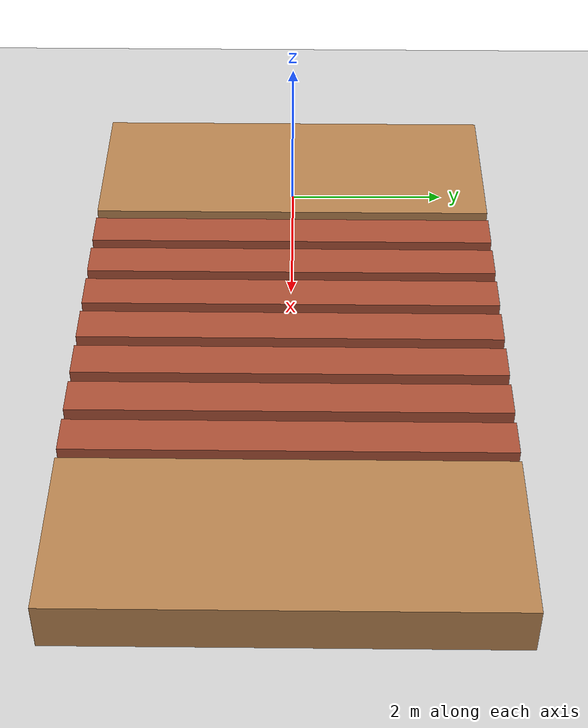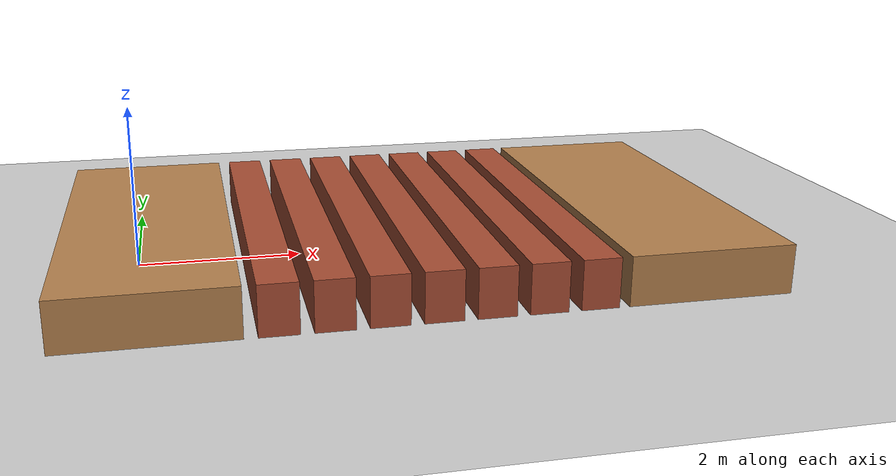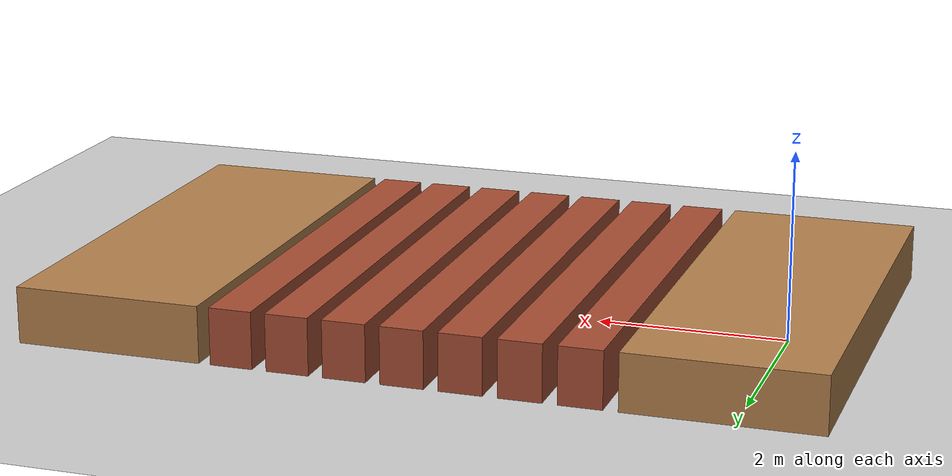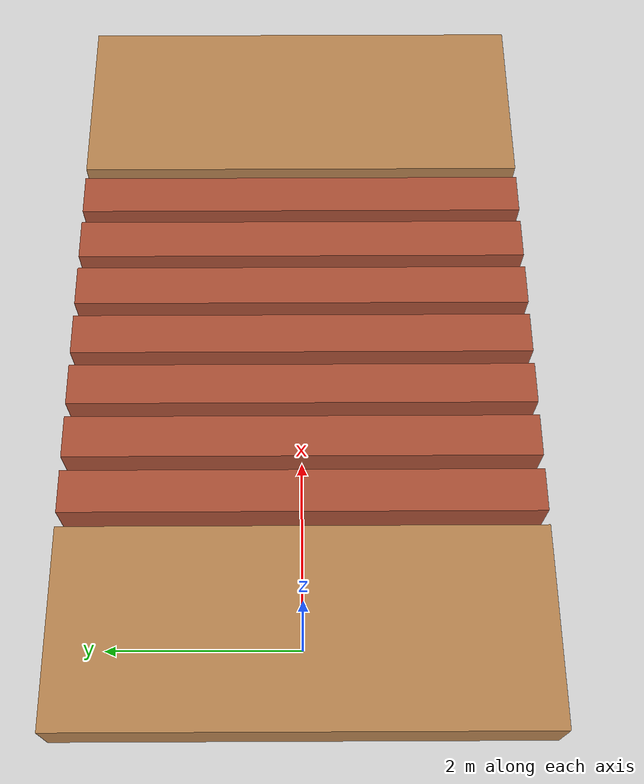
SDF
<?xml version="1.0"?>
<sdf version="1.5">
  <world name="default">

    <physics type="ode">
      <max_step_size>0.001</max_step_size>
      <real_time_factor>1</real_time_factor>
      <real_time_update_rate>600</real_time_update_rate>
      <gravity>0 0 -9.81</gravity>
      <ode>
        <solver>
          <type>quick</type>
          <iters>50</iters>
          <sor>1.3</sor>
        </solver>
        <constraints>
          <cfm>0.0</cfm>
          <erp>0.2</erp>
          <contact_max_correcting_vel>10.0</contact_max_correcting_vel>
          <contact_surface_layer>0.001</contact_surface_layer>
        </constraints>
      </ode>
    </physics>

    <scene>
      <sky>
        <clouds>
          <speed>12</speed>
        </clouds>
      </sky>
    </scene>
    <!-- A global light source -->
    <include>
      <uri>model://sun</uri>
    </include>
    <!-- A ground plane -->
    <include>
      <uri>model://ground_plane</uri>
    </include>
    <!-- environment blocks, obstacles or stairs -->
    <model name='stepping stone right'>
      <pose frame=''>0 0.0 0.0 0 -0 0</pose>

      <link name="floor3">
        <pose>0.125 0 0.3 0 0 0</pose>
        <collision name="floor3_collision">
          <geometry>
            <box>
              <size>2 5 0.6</size>
            </box>
          </geometry>
        </collision>
        <visual name="floor3_visual">
          <geometry>
            <box>
              <size>2 5 0.6</size>
            </box>
          </geometry>
          <material>
            <script>
              <uri>file://media/materials/scripts/gazebo.material</uri>
              <name>Gazebo/Wood</name>
            </script>
            <ambient>1 1 1 1</ambient>
          </material>
        </visual>
      </link>

      <link name='stones'>
        <pose frame=''>1.5 .0 0 0 -0 0</pose>

        <visual name='stone_1_Visual_0'>
          <pose frame=''>0.0 -0 0.3 0 -0 1.5708</pose>
          <geometry>
            <box>
              <size>5 0.45 0.6</size>
            </box>
          </geometry>
          <material>
            <script>
              <uri>file://media/materials/scripts/gazebo.material</uri>
              <name>Gazebo/Bricks</name>
            </script>
            <ambient>1 1 1 1</ambient>
          </material>
          <meta>
            <layer>0</layer>
          </meta>
        </visual>
        <collision name='stone_1_Collision_0'>
          <pose frame=''>0.0 -0 0.3 0 -0 1.5708</pose>
          <geometry>
            <box>
              <size>5 0.45 0.6</size>
            </box>
          </geometry>
        </collision>

        <visual name='stone_1_Visual_1'>
          <pose frame=''>0.6 -0 0.3 0 -0 1.5708</pose>
          <geometry>
            <box>
              <size>5 0.45 0.6</size>
            </box>
          </geometry>
          <material>
            <script>
              <uri>file://media/materials/scripts/gazebo.material</uri>
              <name>Gazebo/Bricks</name>
            </script>
            <ambient>1 1 1 1</ambient>
          </material>
          <meta>
            <layer>0</layer>
          </meta>
        </visual>
        <collision name='stone_1_Collision_1'>
          <pose frame=''>0.6 -0 0.3 0 -0 1.5708</pose>
          <geometry>
            <box>
              <size>5 0.45 0.6</size>
            </box>
          </geometry>
        </collision>

        <visual name='stone_1_Visual_2'>
          <pose frame=''>1.2 0 0.3 0 -0 1.5708</pose>
          <geometry>
            <box>
              <size>5 0.45 0.6</size>
            </box>
          </geometry>
          <material>
            <script>
              <uri>file://media/materials/scripts/gazebo.material</uri>
              <name>Gazebo/Bricks</name>
            </script>
            <ambient>1 1 1 1</ambient>
          </material>
          <meta>
            <layer>0</layer>
          </meta>
        </visual>
        <collision name='stone_1_Collision_2'>
          <pose frame=''>1.2 0 0.3 0 -0 1.5708</pose>
          <geometry>
            <box>
              <size>5 0.45 0.6</size>
            </box>
          </geometry>
        </collision>

        <visual name='stone_1_Visual_3'>
          <pose frame=''>1.8 0 0.3 0 -0 1.5708</pose>
          <geometry>
            <box>
              <size>5 0.45 0.6</size>
            </box>
          </geometry>
          <material>
            <script>
              <uri>file://media/materials/scripts/gazebo.material</uri>
              <name>Gazebo/Bricks</name>
            </script>
            <ambient>1 1 1 1</ambient>
          </material>
          <meta>
            <layer>0</layer>
          </meta>
        </visual>
        <collision name='stone_1_Collision_3'>
          <pose frame=''>1.8 0 0.3 0 -0 1.5708</pose>
          <geometry>
            <box>
              <size>5 0.45 0.6</size>
            </box>
          </geometry>
        </collision>

      <visual name='stone_1_Visual_4'>
        <pose frame=''>2.4 0 0.3 0 -0 1.5708</pose>
        <geometry>
          <box>
            <size>5 0.45 0.6</size>
          </box>
        </geometry>
        <material>
          <script>
            <uri>file://media/materials/scripts/gazebo.material</uri>
            <name>Gazebo/Bricks</name>
          </script>
          <ambient>1 1 1 1</ambient>
        </material>
        <meta>
          <layer>0</layer>
        </meta>
      </visual>
      <collision name='stone_1_Collision_4'>
        <pose frame=''>2.4 0 0.3 0 -0 1.5708</pose>
        <geometry>
          <box>
            <size>5 0.45 0.6</size>
          </box>
        </geometry>
      </collision>

      <visual name='stone_1_Visual_5'>
        <pose frame=''>3.0 0 0.3 0 -0 1.5708</pose>
        <geometry>
          <box>
            <size>5 0.45 0.6</size>
          </box>
        </geometry>
        <material>
          <script>
            <uri>file://media/materials/scripts/gazebo.material</uri>
            <name>Gazebo/Bricks</name>
          </script>
          <ambient>1 1 1 1</ambient>
        </material>
        <meta>
          <layer>0</layer>
        </meta>
      </visual>
      <collision name='stone_1_Collision_5'>
        <pose frame=''>3.0 0 0.3 0 -0 1.5708</pose>
        <geometry>
          <box>
            <size>5 0.45 0.6</size>
          </box>
        </geometry>
      </collision>

      <visual name='stone_1_Visual_6'>
        <pose frame=''>3.6 0 0.3 0 -0 1.5708</pose>
        <geometry>
          <box>
            <size>5 0.45 0.6</size>
          </box>
        </geometry>
        <material>
          <script>
            <uri>file://media/materials/scripts/gazebo.material</uri>
            <name>Gazebo/Bricks</name>
          </script>
          <ambient>1 1 1 1</ambient>
        </material>
        <meta>
          <layer>0</layer>
        </meta>
      </visual>
      <collision name='stone_1_Collision_6'>
        <pose frame=''>3.6 0 0.3 0 -0 1.5708</pose>
        <geometry>
          <box>
            <size>5 0.45 0.6</size>
          </box>
        </geometry>
      </collision>

      </link>

      <link name="floor4">
        <pose>6.45 0 0.3 0 0 0</pose>
        <collision name="floor3_collision">
          <geometry>
            <box>
              <size>2 5 0.6</size>
            </box>
          </geometry>
        </collision>
        <visual name="floor3_visual">
          <geometry>
            <box>
              <size>2 5 0.6</size>
            </box>
          </geometry>
          <material>
            <script>
              <uri>file://media/materials/scripts/gazebo.material</uri>
              <name>Gazebo/Wood</name>
            </script>
            <ambient>1 1 1 1</ambient>
          </material>
        </visual>
      </link>

      <static>1</static>
    </model>
  </world>
</sdf>
